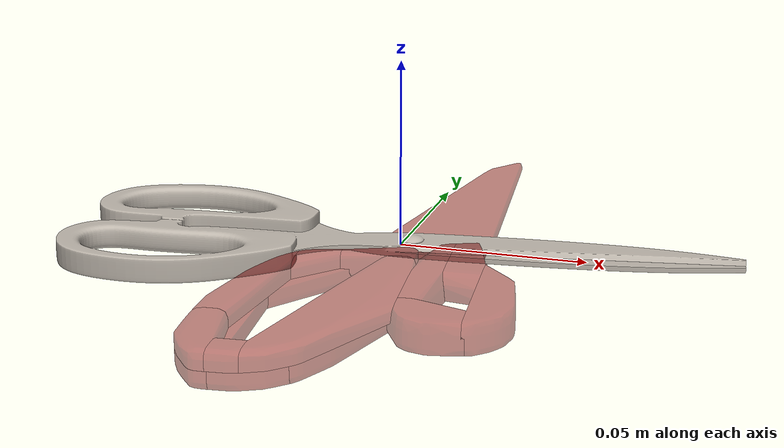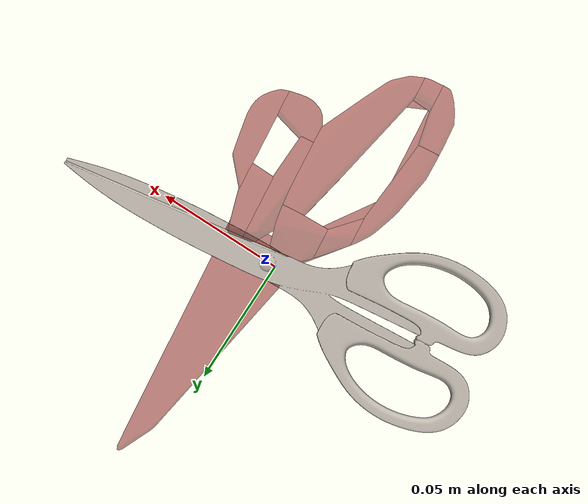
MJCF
<?xml version='1.0' encoding='utf-8'?>
<mujoco model="scissors_9">
  <asset>
    <mesh file="visual/model_normalized_0.obj" name="model_normalized_0_vis" scale="0.18 0.18 0.18" refquat="0.04906767432741779 0.0 0.0 0.9987954562051724" />
    <texture type="2d" name="image0" file="visual/image0.png" />
    <material name="lambert4SG" texture="image0" specular="0.5" shininess="0.15999998099999999" />
    <mesh file="collision/collision_mesh_collision_0.obj" name="scissors_collision_mesh_0" scale="0.18 0.18 0.18" refquat="0.04906767432741779 0.0 0.0 0.9987954562051724" />
    <mesh file="collision/collision_mesh_collision_1.obj" name="scissors_collision_mesh_1" scale="0.18 0.18 0.18" refquat="0.04906767432741779 0.0 0.0 0.9987954562051724" />
    <mesh file="collision/collision_mesh_collision_2.obj" name="scissors_collision_mesh_2" scale="0.18 0.18 0.18" refquat="0.04906767432741779 0.0 0.0 0.9987954562051724" />
    <mesh file="collision/collision_mesh_collision_3.obj" name="scissors_collision_mesh_3" scale="0.18 0.18 0.18" refquat="0.04906767432741779 0.0 0.0 0.9987954562051724" />
    <mesh file="collision/collision_mesh_collision_4.obj" name="scissors_collision_mesh_4" scale="0.18 0.18 0.18" refquat="0.04906767432741779 0.0 0.0 0.9987954562051724" />
    <mesh file="collision/collision_mesh_collision_5.obj" name="scissors_collision_mesh_5" scale="0.18 0.18 0.18" refquat="0.04906767432741779 0.0 0.0 0.9987954562051724" />
    <mesh file="collision/collision_mesh_collision_6.obj" name="scissors_collision_mesh_6" scale="0.18 0.18 0.18" refquat="0.04906767432741779 0.0 0.0 0.9987954562051724" />
    <mesh file="collision/collision_mesh_collision_7.obj" name="scissors_collision_mesh_7" scale="0.18 0.18 0.18" refquat="0.04906767432741779 0.0 0.0 0.9987954562051724" />
    <mesh file="collision/collision_mesh_collision_8.obj" name="scissors_collision_mesh_8" scale="0.18 0.18 0.18" refquat="0.04906767432741779 0.0 0.0 0.9987954562051724" />
    <mesh file="collision/collision_mesh_collision_9.obj" name="scissors_collision_mesh_9" scale="0.18 0.18 0.18" refquat="0.04906767432741779 0.0 0.0 0.9987954562051724" />
    <mesh file="collision/collision_mesh_collision_10.obj" name="scissors_collision_mesh_10" scale="0.18 0.18 0.18" refquat="0.04906767432741779 0.0 0.0 0.9987954562051724" />
    <mesh file="collision/collision_mesh_collision_11.obj" name="scissors_collision_mesh_11" scale="0.18 0.18 0.18" refquat="0.04906767432741779 0.0 0.0 0.9987954562051724" />
    <mesh file="collision/collision_mesh_collision_12.obj" name="scissors_collision_mesh_12" scale="0.18 0.18 0.18" refquat="0.04906767432741779 0.0 0.0 0.9987954562051724" />
    <mesh file="collision/collision_mesh_collision_13.obj" name="scissors_collision_mesh_13" scale="0.18 0.18 0.18" refquat="0.04906767432741779 0.0 0.0 0.9987954562051724" />
    <mesh file="collision/collision_mesh_collision_14.obj" name="scissors_collision_mesh_14" scale="0.18 0.18 0.18" refquat="0.04906767432741779 0.0 0.0 0.9987954562051724" />
  </asset>
  <default>
    <default class="region">
      <geom group="1" conaffinity="0" contype="0" rgba="0 1 0 0" />
    </default>
    <default class="collision">
      <geom group="0" rgba="0.5 0 0 0.5" density="1000.0" />
    </default>
  </default>
  <worldbody>
    <body>
      <body name="object">
        <geom solimp="0.998 0.998 0.001" solref="0.001 1" density="100" friction="0.95 0.3 0.1" type="mesh" mesh="model_normalized_0_vis" conaffinity="0" contype="0" group="1" material="lambert4SG" />
        <geom class="region" name="reg_bbox" type="box" pos="0.005241021490398068 -0.00046633426848764477 8.999999998385299e-10" size="0.03568889217617313 0.09266448859487372 0.004862607299999999" />
        <geom mesh="scissors_collision_mesh_0" type="mesh" class="collision" />
        <geom mesh="scissors_collision_mesh_1" type="mesh" class="collision" />
        <geom mesh="scissors_collision_mesh_2" type="mesh" class="collision" />
        <geom mesh="scissors_collision_mesh_3" type="mesh" class="collision" />
        <geom mesh="scissors_collision_mesh_4" type="mesh" class="collision" />
        <geom mesh="scissors_collision_mesh_5" type="mesh" class="collision" />
        <geom mesh="scissors_collision_mesh_6" type="mesh" class="collision" />
        <geom mesh="scissors_collision_mesh_7" type="mesh" class="collision" />
        <geom mesh="scissors_collision_mesh_8" type="mesh" class="collision" />
        <geom mesh="scissors_collision_mesh_9" type="mesh" class="collision" />
        <geom mesh="scissors_collision_mesh_10" type="mesh" class="collision" />
        <geom mesh="scissors_collision_mesh_11" type="mesh" class="collision" />
        <geom mesh="scissors_collision_mesh_12" type="mesh" class="collision" />
        <geom mesh="scissors_collision_mesh_13" type="mesh" class="collision" />
        <geom mesh="scissors_collision_mesh_14" type="mesh" class="collision" />
      </body>
    <site rgba="0 0 0 0" size="0.005" pos="0 0 -0.0048626064" name="bottom_site" /><site rgba="0 0 0 0" size="0.005" pos="0 0 0.0048626082" name="top_site" /><site rgba="0 0 0 0" size="0.005" pos="0.093130823 0.093130823 0" name="horizontal_radius_site" /></body>
  </worldbody>
</mujoco>
